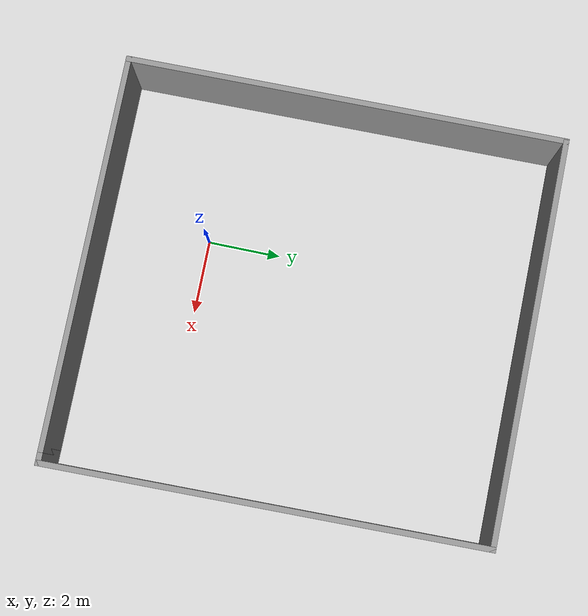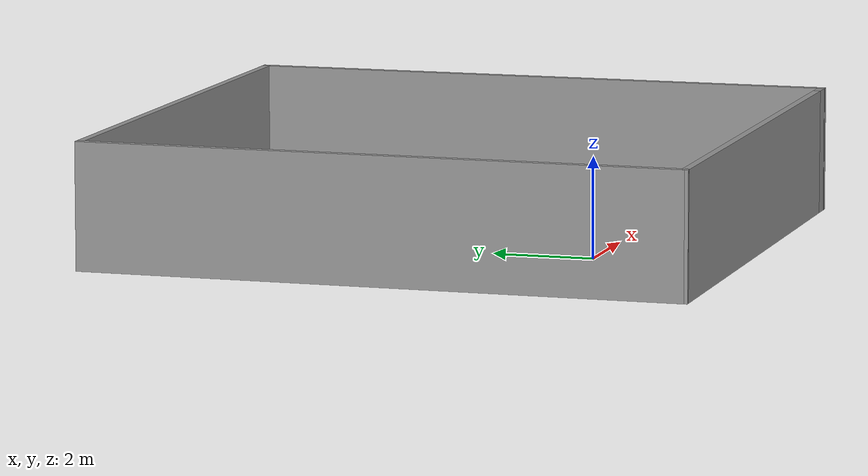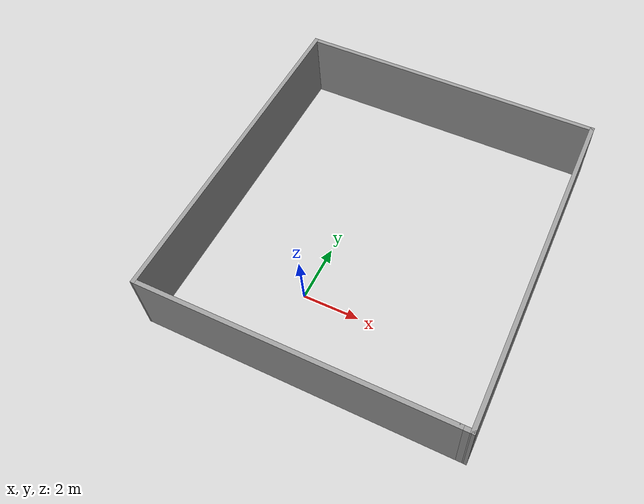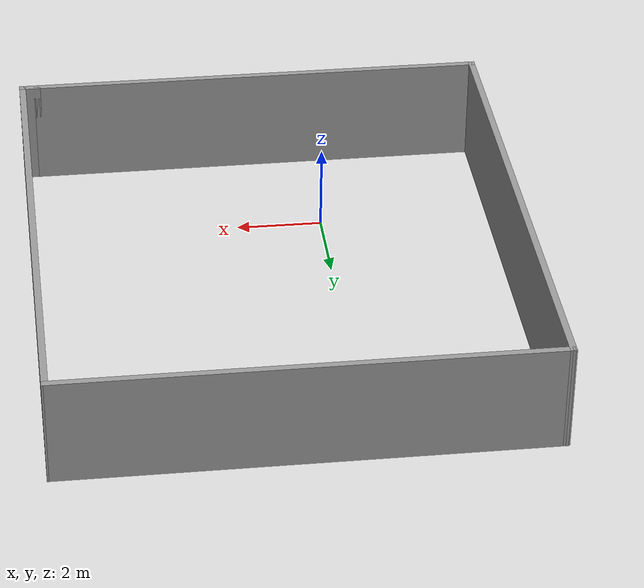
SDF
<?xml version='1.0'?>
<sdf version='1.6'>
  <model name='library_wall'>
    <pose frame=''>1.39776 3.04622 0 0 -0 0</pose>
    <link name='Wall_0'>
      <collision name='Wall_0_Collision'>
        <geometry>
          <box>
            <size>12 0.15 2.5</size>
          </box>
        </geometry>
        <pose frame=''>0 0 1.25 0 -0 0</pose>
      </collision>
      <visual name='Wall_0_Visual'>
        <pose frame=''>0 0 1.25 0 -0 0</pose>
        <geometry>
          <box>
            <size>12 0.15 2.5</size>
          </box>
        </geometry>
        <material>
          <script>
            <uri>file://media/materials/scripts/gazebo.material</uri>
            <name>Gazebo/Grey</name>
          </script>
          <ambient>1 1 1 1</ambient>
        </material>
        <meta>
          <layer>0</layer>
        </meta>
      </visual>
      <pose frame=''>-5.47522 0 0 0 -0 -1.56575</pose>
    </link>
    <link name='Wall_4'>
      <collision name='Wall_4_Collision'>
        <geometry>
          <box>
            <size>10.75 0.15 2.5</size>
          </box>
        </geometry>
        <pose frame=''>0 0 1.25 0 -0 0</pose>
      </collision>
      <visual name='Wall_4_Visual'>
        <pose frame=''>0 0 1.25 0 -0 0</pose>
        <geometry>
          <box>
            <size>10.75 0.15 2.5</size>
          </box>
        </geometry>
        <material>
          <script>
            <uri>file://media/materials/scripts/gazebo.material</uri>
            <name>Gazebo/Grey</name>
          </script>
          <ambient>1 1 1 1</ambient>
        </material>
        <meta>
          <layer>0</layer>
        </meta>
      </visual>
      <pose frame=''>-0.145313 -5.925 0 0 -0 0</pose>
    </link>
    <link name='Wall_5'>
      <collision name='Wall_5_Collision'>
        <geometry>
          <box>
            <size>0.5 0.15 2.5</size>
          </box>
        </geometry>
        <pose frame=''>0 0 1.25 0 -0 0</pose>
      </collision>
      <visual name='Wall_5_Visual'>
        <pose frame=''>0 0 1.25 0 -0 0</pose>
        <geometry>
          <box>
            <size>0.5 0.15 2.5</size>
          </box>
        </geometry>
        <material>
          <script>
            <uri>file://media/materials/scripts/gazebo.material</uri>
            <name>Gazebo/Grey</name>
          </script>
          <ambient>1 1 1 1</ambient>
        </material>
        <meta>
          <layer>0</layer>
        </meta>
      </visual>
      <pose frame=''>5.32969 -5.925 0 0 -0 0</pose>
    </link>
    <link name='Wall_7'>
      <collision name='Wall_7_Collision'>
        <geometry>
          <box>
            <size>11 0.15 2.5</size>
          </box>
        </geometry>
        <pose frame=''>0 0 1.25 0 -0 0</pose>
      </collision>
      <visual name='Wall_7_Visual'>
        <pose frame=''>0 0 1.25 0 -0 0</pose>
        <geometry>
          <box>
            <size>11 0.15 2.5</size>
          </box>
        </geometry>
        <material>
          <script>
            <uri>file://media/materials/scripts/gazebo.material</uri>
            <name>Gazebo/Grey</name>
          </script>
          <ambient>1 1 1 1</ambient>
        </material>
        <meta>
          <layer>0</layer>
        </meta>
      </visual>
      <pose frame=''>-0.050218 5.925 0 0 -0 3.14159</pose>
    </link>
    <link name='Wall_9'>
      <collision name='Wall_9_Collision'>
        <geometry>
          <box>
            <size>12 0.15 2.5</size>
          </box>
        </geometry>
        <pose frame=''>0 0 1.25 0 -0 0</pose>
      </collision>
      <visual name='Wall_9_Visual'>
        <pose frame=''>0 0 1.25 0 -0 0</pose>
        <geometry>
          <box>
            <size>12 0.15 2.5</size>
          </box>
        </geometry>
        <material>
          <script>
            <uri>file://media/materials/scripts/gazebo.material</uri>
            <name>Gazebo/Grey</name>
          </script>
          <ambient>1 1 1 1</ambient>
        </material>
        <meta>
          <layer>0</layer>
        </meta>
      </visual>
      <pose frame=''>5.43973 0 0 0 -0 -1.55983</pose>
    </link>
    <static>1</static>
  </model>
</sdf>
